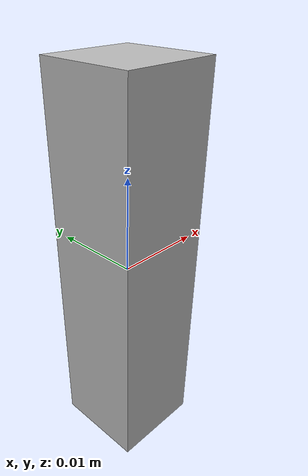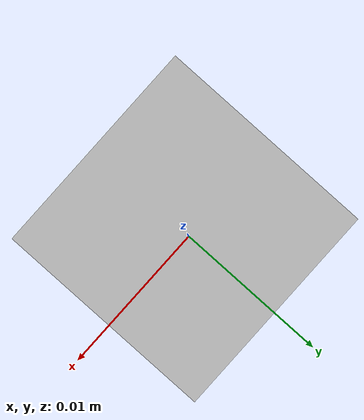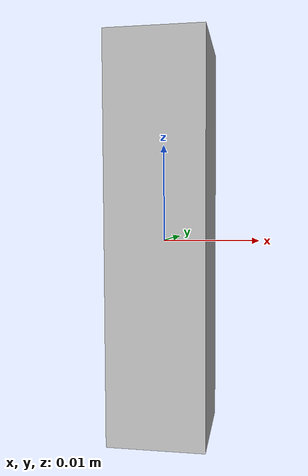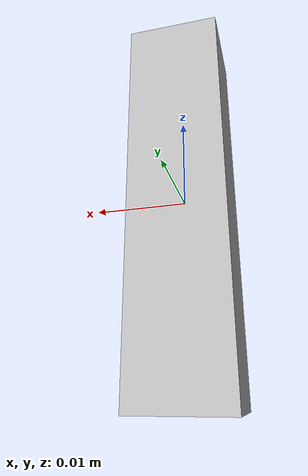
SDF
<?xml version="1.0" ?>
<sdf version="1.6">
  <model name="euro_lidar">
    <link name="euro_lidar/base_link">
      <pose>0 0 0 0 0 0</pose>
      <inertial>
        <pose>0 0 0.0435 0 0 0</pose>
        <mass>0.37</mass>
        <inertia>
          <ixx>0.00034437749999999994</ixx>
          <ixy>0</ixy>
          <ixz>0</ixz>
          <iyy>0.00034437749999999994</iyy>
          <iyz>0</iyz>
          <izz>0.00022199999999999998</izz>
        </inertia>
      </inertial>
      <collision name="collision_base">
        <pose>0 0 0.0205 0 0 0</pose>
        <geometry>
          <box>
            <size>0.01 0.01 0.041</size>
          </box>
        </geometry>
      </collision>
      <visual name="visual">
        <geometry>
          <box>
            <size>0.01 0.01 0.041</size>
          </box>
        </geometry>
      </visual>
      <sensor name="lidar" type="gpu_lidar">
        <pose>0 0 0.055 0 0 0</pose>
        <ray>
          <scan>
            <vertical>
              <samples>1</samples> <!-- 1D lidar: single ray -->
              <resolution>0.01</resolution>
              <min_angle>0.0</min_angle> <!-- No angle range for 1D -->
              <max_angle>0.0</max_angle>
            </vertical>
          </scan>
          <range>
            <min>0.02</min> <!-- 2 cm minimum range -->
            <max>10.0</max> <!-- 4 meters maximum range -->
            <resolution>0.01</resolution> <!-- 1 cm resolution -->
          </range>
        </ray>
        <always_on>1</always_on>
        <update_rate>50</update_rate> <!-- 50 Hz update rate -->
        <visualize>true</visualize> <!-- Enable visualization for lidar rays -->
        <topic>lidar/z</topic> <!-- Publishes range data -->
      </sensor>
    </link>
  </model>
</sdf>
